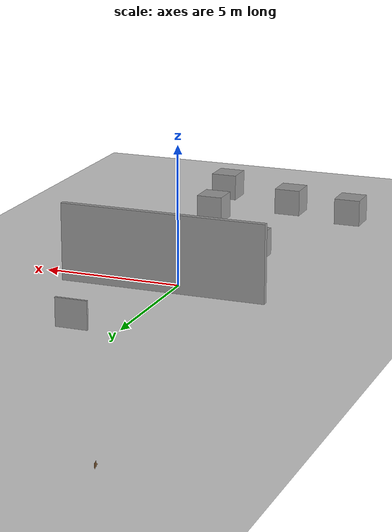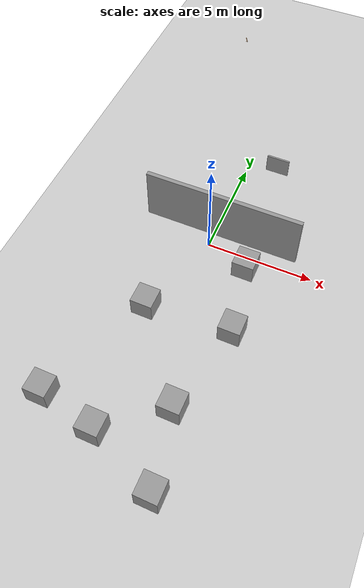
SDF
<sdf version="1.6">
 <world name="default">
  <light name="sun" type="directional">
   <pose>0 0 10 0 -0 0</pose>
   <diffuse>0.8 0.8 0.8 1</diffuse>
   <specular>0.2 0.2 0.2 1</specular>
   <attenuation>
    <range>1000</range>
    <constant>0.9</constant>
    <linear>0.01</linear>
    <quadratic>0.001</quadratic>
   </attenuation>
   <direction>-0.5 0.1 -0.9</direction>
  </light>
  <model name="ground_plane">
   <static>1</static>
   <link name="link">
    <collision name="collision">
     <geometry><plane><normal>0 0 1</normal><size>100 100</size></plane></geometry>
     <surface><friction><ode><mu>100</mu><mu2>50</mu2></ode></friction></surface>
    </collision>
    <visual name="visual">
     <cast_shadows>0</cast_shadows>
     <geometry><plane><normal>0 0 1</normal><size>100 100</size></plane></geometry>
     <material>
      <script><uri>file://media/materials/scripts/gazebo.material</uri><name>Gazebo/Grey</name></script>
     </material>
    </visual>
   </link>
  </model>
  <gravity>0 0 -9.8</gravity>
  <magnetic_field>6e-06 2.3e-05 -4.2e-05</magnetic_field>
  <atmosphere type="adiabatic"/>
  <physics name="default_physics" default="0" type="ode">
   <max_step_size>0.001</max_step_size>
   <real_time_factor>5</real_time_factor>
   <real_time_update_rate>0</real_time_update_rate>
  </physics>
  <scene><ambient>0.4 0.4 0.4 1</ambient><background>0.7 0.7 0.7 1</background><shadows>1</shadows></scene>
  <spherical_coordinates>
   <surface_model>EARTH_WGS84</surface_model>
   <latitude_deg>0</latitude_deg>
   <longitude_deg>0</longitude_deg>
   <elevation>0</elevation>
   <heading_deg>0</heading_deg>
  </spherical_coordinates>
  <model name="grey_wall">
   <static>1</static>
   <link name="link">
    <pose>0 0 1.4 0 -0 0</pose>
    <collision name="collision"><geometry><box><size>7.5 0.2 2.8</size></box></geometry></collision>
    <visual name="visual">
     <cast_shadows>0</cast_shadows>
     <geometry><box><size>7.5 0.2 2.8</size></box></geometry>
     <material>
      <script>
       <uri>model://grey_wall/materials/scripts</uri>
       <uri>model://grey_wall/materials/textures</uri>
       <name>vrc/grey_wall</name>
      </script>
     </material>
    </visual>
   </link>
   <pose>0.29866 0.759083 0 0 -0 0</pose>
  </model>
  <model name="wooden_peg_board">
   <link name="wooden_board::base">
    <pose>0 0 0.00523 0 -0 0</pose>
    <inertial>
     <mass>0.2765</mass>
     <inertia>
      <ixx>0.0025148</ixx>
      <ixy>0</ixy>
      <ixz>0</ixz>
      <iyy>0.00024037</iyy>
      <iyz>0</iyz>
      <izz>0.00275013</izz>
     </inertia>
    </inertial>
    <collision name="collision">
     <geometry><box><size>0.1016 0.3302 0.01046</size></box></geometry>
     <surface>
      <contact>
       <poissons_ratio>0.347</poissons_ratio>
       <elastic_modulus>8.8e+09</elastic_modulus>
       <ode><kp>100000</kp><kd>100</kd><max_vel>100</max_vel><min_depth>0.001</min_depth></ode>
      </contact>
      <friction>
       <torsional>
        <coefficient>1</coefficient>
        <use_patch_radius>0</use_patch_radius>
        <surface_radius>0.01</surface_radius>
       </torsional>
      </friction>
     </surface>
    </collision>
    <visual name="visual">
     <geometry><box><size>0.1016 0.3302 0.01046</size></box></geometry>
     <material>
      <script><uri>file://media/materials/scripts/gazebo.material</uri><name>Gazebo/Wood</name></script>
     </material>
    </visual>
    <visual name="tee_nut_1">
     <pose>0 -0.116 0 0 -0 0</pose>
     <geometry><cylinder><radius>0.00635</radius><length>0.0105646</length></cylinder></geometry>
     <material>
      <script><uri>file://media/materials/scripts/gazebo.material</uri><name>Gazebo/Grey</name></script>
     </material>
    </visual>
    <visual name="tee_nut_2">
     <pose>0 -0.038 0 0 -0 0</pose>
     <geometry><cylinder><radius>0.00635</radius><length>0.0105646</length></cylinder></geometry>
     <material>
      <script><uri>file://media/materials/scripts/gazebo.material</uri><name>Gazebo/Grey</name></script>
     </material>
    </visual>
    <visual name="tee_nut_3">
     <pose>0 0.038 0 0 -0 0</pose>
     <geometry><cylinder><radius>0.00635</radius><length>0.0105646</length></cylinder></geometry>
     <material>
      <script><uri>file://media/materials/scripts/gazebo.material</uri><name>Gazebo/Grey</name></script>
     </material>
    </visual>
    <visual name="tee_nut_4">
     <pose>0 0.116 0 0 -0 0</pose>
     <geometry><cylinder><radius>0.00635</radius><length>0.0105646</length></cylinder></geometry>
     <material>
      <script><uri>file://media/materials/scripts/gazebo.material</uri><name>Gazebo/Grey</name></script>
     </material>
    </visual>
   </link>
   <link name="peg::link">
    <pose>0 0.116 0.04 0 -0 0</pose>
    <inertial>
     <mass>0.0175</mass>
     <inertia>
      <ixx>9.74923e-06</ixx>
      <ixy>0</ixy>
      <ixz>0</ixz>
      <iyy>9.74923e-06</iyy>
      <iyz>0</iyz>
      <izz>8.31797e-07</izz>
     </inertia>
    </inertial>
    <collision name="collision">
     <geometry><cylinder><radius>0.00975</radius><length>0.08</length></cylinder></geometry>
     <surface>
      <contact>
       <poissons_ratio>0.347</poissons_ratio>
       <elastic_modulus>8.8e+09</elastic_modulus>
       <ode><kp>100000</kp><kd>100</kd><max_vel>100</max_vel><min_depth>0.001</min_depth></ode>
      </contact>
      <friction>
       <torsional>
        <coefficient>1</coefficient>
        <use_patch_radius>0</use_patch_radius>
        <surface_radius>0.01</surface_radius>
       </torsional>
      </friction>
     </surface>
    </collision>
    <visual name="visual">
     <geometry><cylinder><radius>0.00975</radius><length>0.08</length></cylinder></geometry>
     <material>
      <script><uri>file://media/materials/scripts/gazebo.material</uri><name>Gazebo/Wood</name></script>
     </material>
    </visual>
   </link>
   <joint name="board_peg" type="revolute">
    <parent>wooden_board::base</parent>
    <child>peg::link</child>
    <axis>
     <xyz>0 0 1</xyz>
     <limit><upper>0</upper><lower>0</lower></limit>
     <use_parent_model_frame>0</use_parent_model_frame>
     <dynamics><spring_reference>0</spring_reference><spring_stiffness>0</spring_stiffness></dynamics>
    </axis>
   </joint>
   <pose>-3.75266 15.163 0.058054 3.14156 1.03754 0.46252</pose>
  </model>
  <model name="unit_box_0">
   <static>true</static>
   <pose>1.80558 -8.11431 0.5898 -0 -0 -0</pose>
   <link name="link">
    <inertial>
     <mass>1</mass>
     <inertia>
      <ixx>0.166667</ixx>
      <ixy>0</ixy>
      <ixz>0</ixz>
      <iyy>0.166667</iyy>
      <iyz>0</iyz>
      <izz>0.166667</izz>
     </inertia>
    </inertial>
    <collision name="collision"><geometry><box><size>1 1 1</size></box></geometry></collision>
    <visual name="visual">
     <geometry><box><size>1 1 1</size></box></geometry>
     <material>
      <script><name>Gazebo/Grey</name><uri>file://media/materials/scripts/gazebo.material</uri></script>
     </material>
    </visual>
   </link>
  </model>
  <model name="unit_box_2">
   <static>true</static>
   <pose>1.45737 5.57997 0.5898 0 -0 2.3e-05</pose>
   <link name="link">
    <inertial>
     <mass>1</mass>
     <inertia>
      <ixx>0.166667</ixx>
      <ixy>0</ixy>
      <ixz>0</ixz>
      <iyy>0.166667</iyy>
      <iyz>0</iyz>
      <izz>0.166667</izz>
     </inertia>
    </inertial>
    <collision name="collision"><geometry><box><size>1.1404 0.084159 1</size></box></geometry></collision>
    <visual name="visual">
     <geometry><box><size>1.1404 0.084159 1</size></box></geometry>
     <material>
      <script><name>Gazebo/Grey</name><uri>file://media/materials/scripts/gazebo.material</uri></script>
     </material>
    </visual>
   </link>
  </model>
  <model name="unit_box_1">
   <static>1</static>
   <pose>2.0919 -0.721721 0.591937 0 -0 0</pose>
   <link name="link">
    <inertial>
     <mass>1</mass>
     <inertia>
      <ixx>0.166667</ixx>
      <ixy>0</ixy>
      <ixz>0</ixz>
      <iyy>0.166667</iyy>
      <iyz>0</iyz>
      <izz>0.166667</izz>
     </inertia>
    </inertial>
    <collision name="collision"><geometry><box><size>1 1 1</size></box></geometry></collision>
    <visual name="visual">
     <geometry><box><size>1 1 1</size></box></geometry>
     <material>
      <script><name>Gazebo/Grey</name><uri>file://media/materials/scripts/gazebo.material</uri></script>
     </material>
    </visual>
   </link>
  </model>
  <model name="unit_box_3">
   <static>true</static>
   <pose>-1.23269 -4.24138 0.5 0 -0 0</pose>
   <link name="link">
    <inertial>
     <mass>1</mass>
     <inertia>
      <ixx>0.166667</ixx>
      <ixy>0</ixy>
      <ixz>0</ixz>
      <iyy>0.166667</iyy>
      <iyz>0</iyz>
      <izz>0.166667</izz>
     </inertia>
    </inertial>
    <collision name="collision"><geometry><box><size>1 1 1</size></box></geometry></collision>
    <visual name="visual">
     <geometry><box><size>1 1 1</size></box></geometry>
     <material>
      <script><name>Gazebo/Grey</name><uri>file://media/materials/scripts/gazebo.material</uri></script>
     </material>
    </visual>
   </link>
  </model>
  <model name="unit_box_4">
   <static>true</static>
   <pose>-0.680969 -10.1409 0.5898 -0 -0 -0</pose>
   <link name="link">
    <inertial>
     <mass>1</mass>
     <inertia>
      <ixx>0.166667</ixx>
      <ixy>0</ixy>
      <ixz>0</ixz>
      <iyy>0.166667</iyy>
      <iyz>0</iyz>
      <izz>0.166667</izz>
     </inertia>
    </inertial>
    <collision name="collision"><geometry><box><size>1 1 1</size></box></geometry></collision>
    <visual name="visual">
     <geometry><box><size>1 1 1</size></box></geometry>
     <material>
      <script><name>Gazebo/Grey</name><uri>file://media/materials/scripts/gazebo.material</uri></script>
     </material>
    </visual>
   </link>
  </model>
  <model name="unit_box">
   <static>true</static>
   <pose>2.70334 -3.94988 0.5 0 -0 0</pose>
   <link name="link">
    <inertial>
     <mass>1</mass>
     <inertia>
      <ixx>0.166667</ixx>
      <ixy>0</ixy>
      <ixz>0</ixz>
      <iyy>0.166667</iyy>
      <iyz>0</iyz>
      <izz>0.166667</izz>
     </inertia>
    </inertial>
    <collision name="collision"><geometry><box><size>1 1 1</size></box></geometry></collision>
    <visual name="visual">
     <geometry><box><size>1 1 1</size></box></geometry>
     <material>
      <script><name>Gazebo/Grey</name><uri>file://media/materials/scripts/gazebo.material</uri></script>
     </material>
    </visual>
   </link>
  </model>
  <model name="unit_box_5">
   <static>true</static>
   <pose>2.45983 -11.4543 0.589802 -4e-06 -0 3e-06</pose>
   <link name="link">
    <inertial>
     <mass>1</mass>
     <inertia>
      <ixx>0.166667</ixx>
      <ixy>0</ixy>
      <ixz>0</ixz>
      <iyy>0.166667</iyy>
      <iyz>0</iyz>
      <izz>0.166667</izz>
     </inertia>
    </inertial>
    <collision name="collision"><geometry><box><size>1 1 1</size></box></geometry></collision>
    <visual name="visual">
     <geometry><box><size>1 1 1</size></box></geometry>
     <material>
      <script><name>Gazebo/Grey</name><uri>file://media/materials/scripts/gazebo.material</uri></script>
     </material>
    </visual>
   </link>
  </model>
  <model name="unit_box_6">
   <static>true</static>
   <pose>-3.29319 -9.57799 0.5898 0 -0 0</pose>
   <link name="link">
    <inertial>
     <mass>1</mass>
     <inertia>
      <ixx>0.166667</ixx>
      <ixy>0</ixy>
      <ixz>0</ixz>
      <iyy>0.166667</iyy>
      <iyz>0</iyz>
      <izz>0.166667</izz>
     </inertia>
    </inertial>
    <collision name="collision"><geometry><box><size>1 1 1</size></box></geometry></collision>
    <visual name="visual">
     <geometry><box><size>1 1 1</size></box></geometry>
     <material>
      <script><name>Gazebo/Grey</name><uri>file://media/materials/scripts/gazebo.material</uri></script>
     </material>
    </visual>
   </link>
  </model>
 </world>
</sdf>
